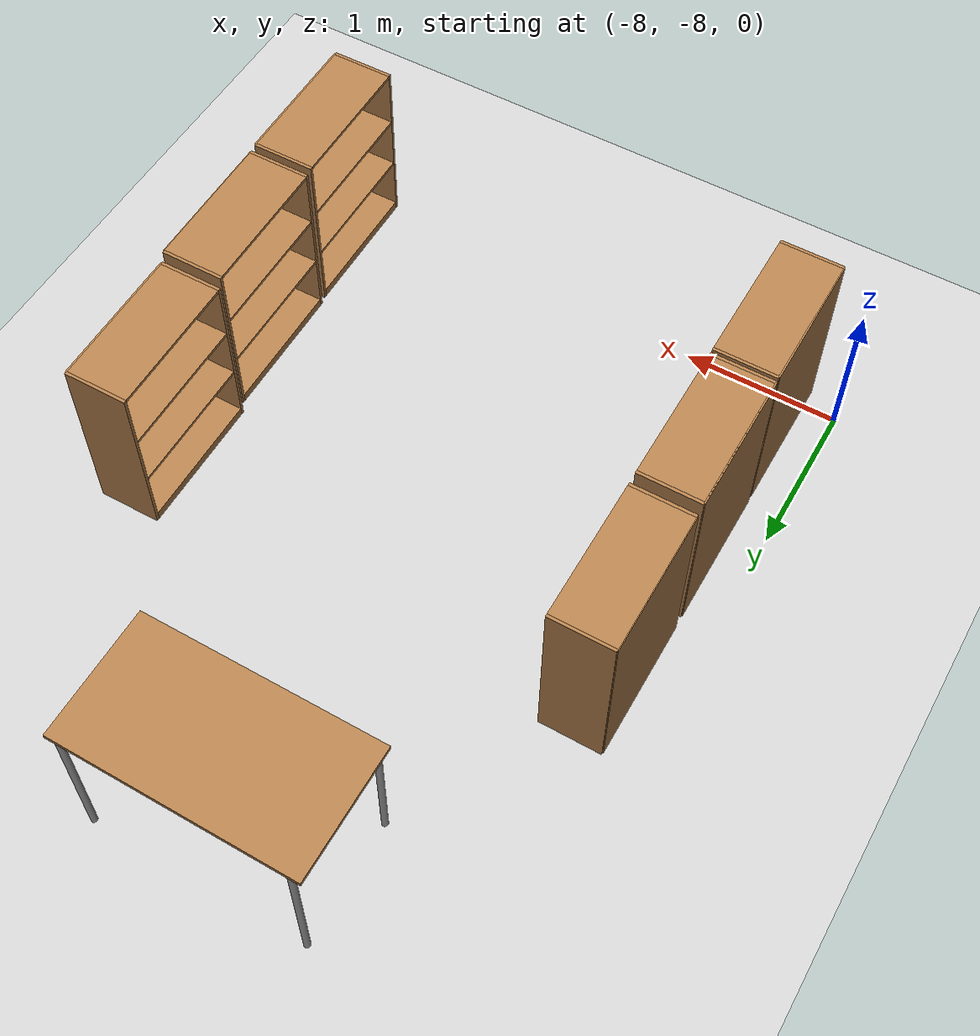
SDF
<sdf version="1.6">
 <world name="default">
  <model name="ground_plane">
   <static>1</static>
   <link name="link">
    <collision name="collision">
     <geometry><plane><normal>0 0 1</normal><size>100 100</size></plane></geometry>
     <surface><friction><ode><mu>100</mu><mu2>50</mu2></ode></friction></surface>
    </collision>
    <visual name="visual">
     <cast_shadows>0</cast_shadows>
     <geometry><plane><normal>0 0 1</normal><size>100 100</size></plane></geometry>
     <material>
      <script><uri>file://media/materials/scripts/gazebo.material</uri><name>Gazebo/Grey</name></script>
     </material>
    </visual>
   </link>
  </model>
  <model name="bookshelf">
   <static>1</static>
   <link name="link">
    <inertial><mass>1</mass></inertial>
    <collision name="back">
     <pose>0 0.005 0.6 0 -0 0</pose>
     <geometry><box><size>0.9 0.01 1.2</size></box></geometry>
    </collision>
    <visual name="visual1">
     <pose>0 0.005 0.6 0 -0 0</pose>
     <geometry><box><size>0.9 0.01 1.2</size></box></geometry>
     <material>
      <script><uri>file://media/materials/scripts/gazebo.material</uri><name>Gazebo/Wood</name></script>
     </material>
    </visual>
    <collision name="left_side">
     <pose>0.45 -0.195 0.6 0 -0 0</pose>
     <geometry><box><size>0.02 0.4 1.2</size></box></geometry>
    </collision>
    <visual name="visual2">
     <pose>0.45 -0.195 0.6 0 -0 0</pose>
     <geometry><box><size>0.02 0.4 1.2</size></box></geometry>
     <material>
      <script><uri>file://media/materials/scripts/gazebo.material</uri><name>Gazebo/Wood</name></script>
     </material>
    </visual>
    <collision name="right_side">
     <pose>-0.45 -0.195 0.6 0 -0 0</pose>
     <geometry><box><size>0.02 0.4 1.2</size></box></geometry>
    </collision>
    <visual name="visual3">
     <pose>-0.45 -0.195 0.6 0 -0 0</pose>
     <geometry><box><size>0.02 0.4 1.2</size></box></geometry>
     <material>
      <script><uri>file://media/materials/scripts/gazebo.material</uri><name>Gazebo/Wood</name></script>
     </material>
    </visual>
    <collision name="bottom">
     <pose>0 -0.195 0.03 0 -0 0</pose>
     <geometry><box><size>0.88 0.4 0.06</size></box></geometry>
    </collision>
    <visual name="visual4">
     <pose>0 -0.195 0.03 0 -0 0</pose>
     <geometry><box><size>0.88 0.4 0.06</size></box></geometry>
     <material>
      <script><uri>file://media/materials/scripts/gazebo.material</uri><name>Gazebo/Wood</name></script>
     </material>
    </visual>
    <collision name="top">
     <pose>0 -0.195 1.19 0 -0 0</pose>
     <geometry><box><size>0.88 0.4 0.02</size></box></geometry>
    </collision>
    <visual name="visual5">
     <pose>0 -0.195 1.19 0 -0 0</pose>
     <geometry><box><size>0.88 0.4 0.02</size></box></geometry>
     <material>
      <script><uri>file://media/materials/scripts/gazebo.material</uri><name>Gazebo/Wood</name></script>
     </material>
    </visual>
    <collision name="low_shelf">
     <pose>0 -0.195 0.43 0 -0 0</pose>
     <geometry><box><size>0.88 0.4 0.02</size></box></geometry>
    </collision>
    <visual name="visual6">
     <pose>0 -0.195 0.43 0 -0 0</pose>
     <geometry><box><size>0.88 0.4 0.02</size></box></geometry>
     <material>
      <script><uri>file://media/materials/scripts/gazebo.material</uri><name>Gazebo/Wood</name></script>
     </material>
    </visual>
    <collision name="high_shelf">
     <pose>0 -0.195 0.8 0 -0 0</pose>
     <geometry><box><size>0.88 0.4 0.02</size></box></geometry>
    </collision>
    <visual name="visual7">
     <pose>0 -0.195 0.8 0 -0 0</pose>
     <geometry><box><size>0.88 0.4 0.02</size></box></geometry>
     <material>
      <script><uri>file://media/materials/scripts/gazebo.material</uri><name>Gazebo/Wood</name></script>
     </material>
    </visual>
   </link>
   <pose>-7.78136 -7.6809 0 0 -0 1.57147</pose>
  </model>
  <model name="bookshelf_clone">
   <static>1</static>
   <link name="link">
    <inertial><mass>1</mass></inertial>
    <collision name="back">
     <pose>0 0.005 0.6 0 -0 0</pose>
     <geometry><box><size>0.9 0.01 1.2</size></box></geometry>
    </collision>
    <visual name="visual1">
     <pose>0 0.005 0.6 0 -0 0</pose>
     <geometry><box><size>0.9 0.01 1.2</size></box></geometry>
     <material>
      <script><uri>file://media/materials/scripts/gazebo.material</uri><name>Gazebo/Wood</name></script>
     </material>
    </visual>
    <collision name="left_side">
     <pose>0.45 -0.195 0.6 0 -0 0</pose>
     <geometry><box><size>0.02 0.4 1.2</size></box></geometry>
    </collision>
    <visual name="visual2">
     <pose>0.45 -0.195 0.6 0 -0 0</pose>
     <geometry><box><size>0.02 0.4 1.2</size></box></geometry>
     <material>
      <script><uri>file://media/materials/scripts/gazebo.material</uri><name>Gazebo/Wood</name></script>
     </material>
    </visual>
    <collision name="right_side">
     <pose>-0.45 -0.195 0.6 0 -0 0</pose>
     <geometry><box><size>0.02 0.4 1.2</size></box></geometry>
    </collision>
    <visual name="visual3">
     <pose>-0.45 -0.195 0.6 0 -0 0</pose>
     <geometry><box><size>0.02 0.4 1.2</size></box></geometry>
     <material>
      <script><uri>file://media/materials/scripts/gazebo.material</uri><name>Gazebo/Wood</name></script>
     </material>
    </visual>
    <collision name="bottom">
     <pose>0 -0.195 0.03 0 -0 0</pose>
     <geometry><box><size>0.88 0.4 0.06</size></box></geometry>
    </collision>
    <visual name="visual4">
     <pose>0 -0.195 0.03 0 -0 0</pose>
     <geometry><box><size>0.88 0.4 0.06</size></box></geometry>
     <material>
      <script><uri>file://media/materials/scripts/gazebo.material</uri><name>Gazebo/Wood</name></script>
     </material>
    </visual>
    <collision name="top">
     <pose>0 -0.195 1.19 0 -0 0</pose>
     <geometry><box><size>0.88 0.4 0.02</size></box></geometry>
    </collision>
    <visual name="visual5">
     <pose>0 -0.195 1.19 0 -0 0</pose>
     <geometry><box><size>0.88 0.4 0.02</size></box></geometry>
     <material>
      <script><uri>file://media/materials/scripts/gazebo.material</uri><name>Gazebo/Wood</name></script>
     </material>
    </visual>
    <collision name="low_shelf">
     <pose>0 -0.195 0.43 0 -0 0</pose>
     <geometry><box><size>0.88 0.4 0.02</size></box></geometry>
    </collision>
    <visual name="visual6">
     <pose>0 -0.195 0.43 0 -0 0</pose>
     <geometry><box><size>0.88 0.4 0.02</size></box></geometry>
     <material>
      <script><uri>file://media/materials/scripts/gazebo.material</uri><name>Gazebo/Wood</name></script>
     </material>
    </visual>
    <collision name="high_shelf">
     <pose>0 -0.195 0.8 0 -0 0</pose>
     <geometry><box><size>0.88 0.4 0.02</size></box></geometry>
    </collision>
    <visual name="visual7">
     <pose>0 -0.195 0.8 0 -0 0</pose>
     <geometry><box><size>0.88 0.4 0.02</size></box></geometry>
     <material>
      <script><uri>file://media/materials/scripts/gazebo.material</uri><name>Gazebo/Wood</name></script>
     </material>
    </visual>
   </link>
   <pose>-7.78423 -6.74163 0 0 -0 1.57147</pose>
  </model>
  <model name="bookshelf_clone_0">
   <static>1</static>
   <link name="link">
    <inertial><mass>1</mass></inertial>
    <collision name="back">
     <pose>0 0.005 0.6 0 -0 0</pose>
     <geometry><box><size>0.9 0.01 1.2</size></box></geometry>
    </collision>
    <visual name="visual1">
     <pose>0 0.005 0.6 0 -0 0</pose>
     <geometry><box><size>0.9 0.01 1.2</size></box></geometry>
     <material>
      <script><uri>file://media/materials/scripts/gazebo.material</uri><name>Gazebo/Wood</name></script>
     </material>
    </visual>
    <collision name="left_side">
     <pose>0.45 -0.195 0.6 0 -0 0</pose>
     <geometry><box><size>0.02 0.4 1.2</size></box></geometry>
    </collision>
    <visual name="visual2">
     <pose>0.45 -0.195 0.6 0 -0 0</pose>
     <geometry><box><size>0.02 0.4 1.2</size></box></geometry>
     <material>
      <script><uri>file://media/materials/scripts/gazebo.material</uri><name>Gazebo/Wood</name></script>
     </material>
    </visual>
    <collision name="right_side">
     <pose>-0.45 -0.195 0.6 0 -0 0</pose>
     <geometry><box><size>0.02 0.4 1.2</size></box></geometry>
    </collision>
    <visual name="visual3">
     <pose>-0.45 -0.195 0.6 0 -0 0</pose>
     <geometry><box><size>0.02 0.4 1.2</size></box></geometry>
     <material>
      <script><uri>file://media/materials/scripts/gazebo.material</uri><name>Gazebo/Wood</name></script>
     </material>
    </visual>
    <collision name="bottom">
     <pose>0 -0.195 0.03 0 -0 0</pose>
     <geometry><box><size>0.88 0.4 0.06</size></box></geometry>
    </collision>
    <visual name="visual4">
     <pose>0 -0.195 0.03 0 -0 0</pose>
     <geometry><box><size>0.88 0.4 0.06</size></box></geometry>
     <material>
      <script><uri>file://media/materials/scripts/gazebo.material</uri><name>Gazebo/Wood</name></script>
     </material>
    </visual>
    <collision name="top">
     <pose>0 -0.195 1.19 0 -0 0</pose>
     <geometry><box><size>0.88 0.4 0.02</size></box></geometry>
    </collision>
    <visual name="visual5">
     <pose>0 -0.195 1.19 0 -0 0</pose>
     <geometry><box><size>0.88 0.4 0.02</size></box></geometry>
     <material>
      <script><uri>file://media/materials/scripts/gazebo.material</uri><name>Gazebo/Wood</name></script>
     </material>
    </visual>
    <collision name="low_shelf">
     <pose>0 -0.195 0.43 0 -0 0</pose>
     <geometry><box><size>0.88 0.4 0.02</size></box></geometry>
    </collision>
    <visual name="visual6">
     <pose>0 -0.195 0.43 0 -0 0</pose>
     <geometry><box><size>0.88 0.4 0.02</size></box></geometry>
     <material>
      <script><uri>file://media/materials/scripts/gazebo.material</uri><name>Gazebo/Wood</name></script>
     </material>
    </visual>
    <collision name="high_shelf">
     <pose>0 -0.195 0.8 0 -0 0</pose>
     <geometry><box><size>0.88 0.4 0.02</size></box></geometry>
    </collision>
    <visual name="visual7">
     <pose>0 -0.195 0.8 0 -0 0</pose>
     <geometry><box><size>0.88 0.4 0.02</size></box></geometry>
     <material>
      <script><uri>file://media/materials/scripts/gazebo.material</uri><name>Gazebo/Wood</name></script>
     </material>
    </visual>
   </link>
   <pose>-7.78677 -5.75368 0 0 -0 1.57147</pose>
  </model>
  <model name="bookshelf_clone_1">
   <static>1</static>
   <link name="link">
    <inertial><mass>1</mass></inertial>
    <collision name="back">
     <pose>0 0.005 0.6 0 -0 0</pose>
     <geometry><box><size>0.9 0.01 1.2</size></box></geometry>
    </collision>
    <visual name="visual1">
     <pose>0 0.005 0.6 0 -0 0</pose>
     <geometry><box><size>0.9 0.01 1.2</size></box></geometry>
     <material>
      <script><uri>file://media/materials/scripts/gazebo.material</uri><name>Gazebo/Wood</name></script>
     </material>
    </visual>
    <collision name="left_side">
     <pose>0.45 -0.195 0.6 0 -0 0</pose>
     <geometry><box><size>0.02 0.4 1.2</size></box></geometry>
    </collision>
    <visual name="visual2">
     <pose>0.45 -0.195 0.6 0 -0 0</pose>
     <geometry><box><size>0.02 0.4 1.2</size></box></geometry>
     <material>
      <script><uri>file://media/materials/scripts/gazebo.material</uri><name>Gazebo/Wood</name></script>
     </material>
    </visual>
    <collision name="right_side">
     <pose>-0.45 -0.195 0.6 0 -0 0</pose>
     <geometry><box><size>0.02 0.4 1.2</size></box></geometry>
    </collision>
    <visual name="visual3">
     <pose>-0.45 -0.195 0.6 0 -0 0</pose>
     <geometry><box><size>0.02 0.4 1.2</size></box></geometry>
     <material>
      <script><uri>file://media/materials/scripts/gazebo.material</uri><name>Gazebo/Wood</name></script>
     </material>
    </visual>
    <collision name="bottom">
     <pose>0 -0.195 0.03 0 -0 0</pose>
     <geometry><box><size>0.88 0.4 0.06</size></box></geometry>
    </collision>
    <visual name="visual4">
     <pose>0 -0.195 0.03 0 -0 0</pose>
     <geometry><box><size>0.88 0.4 0.06</size></box></geometry>
     <material>
      <script><uri>file://media/materials/scripts/gazebo.material</uri><name>Gazebo/Wood</name></script>
     </material>
    </visual>
    <collision name="top">
     <pose>0 -0.195 1.19 0 -0 0</pose>
     <geometry><box><size>0.88 0.4 0.02</size></box></geometry>
    </collision>
    <visual name="visual5">
     <pose>0 -0.195 1.19 0 -0 0</pose>
     <geometry><box><size>0.88 0.4 0.02</size></box></geometry>
     <material>
      <script><uri>file://media/materials/scripts/gazebo.material</uri><name>Gazebo/Wood</name></script>
     </material>
    </visual>
    <collision name="low_shelf">
     <pose>0 -0.195 0.43 0 -0 0</pose>
     <geometry><box><size>0.88 0.4 0.02</size></box></geometry>
    </collision>
    <visual name="visual6">
     <pose>0 -0.195 0.43 0 -0 0</pose>
     <geometry><box><size>0.88 0.4 0.02</size></box></geometry>
     <material>
      <script><uri>file://media/materials/scripts/gazebo.material</uri><name>Gazebo/Wood</name></script>
     </material>
    </visual>
    <collision name="high_shelf">
     <pose>0 -0.195 0.8 0 -0 0</pose>
     <geometry><box><size>0.88 0.4 0.02</size></box></geometry>
    </collision>
    <visual name="visual7">
     <pose>0 -0.195 0.8 0 -0 0</pose>
     <geometry><box><size>0.88 0.4 0.02</size></box></geometry>
     <material>
      <script><uri>file://media/materials/scripts/gazebo.material</uri><name>Gazebo/Wood</name></script>
     </material>
    </visual>
   </link>
   <pose>-4.33405 -7.70418 0 0 0 -1.5643</pose>
  </model>
  <model name="bookshelf_clone_1_clone">
   <static>1</static>
   <link name="link">
    <inertial><mass>1</mass></inertial>
    <collision name="back">
     <pose>0 0.005 0.6 0 -0 0</pose>
     <geometry><box><size>0.9 0.01 1.2</size></box></geometry>
    </collision>
    <visual name="visual1">
     <pose>0 0.005 0.6 0 -0 0</pose>
     <geometry><box><size>0.9 0.01 1.2</size></box></geometry>
     <material>
      <script><uri>file://media/materials/scripts/gazebo.material</uri><name>Gazebo/Wood</name></script>
     </material>
    </visual>
    <collision name="left_side">
     <pose>0.45 -0.195 0.6 0 -0 0</pose>
     <geometry><box><size>0.02 0.4 1.2</size></box></geometry>
    </collision>
    <visual name="visual2">
     <pose>0.45 -0.195 0.6 0 -0 0</pose>
     <geometry><box><size>0.02 0.4 1.2</size></box></geometry>
     <material>
      <script><uri>file://media/materials/scripts/gazebo.material</uri><name>Gazebo/Wood</name></script>
     </material>
    </visual>
    <collision name="right_side">
     <pose>-0.45 -0.195 0.6 0 -0 0</pose>
     <geometry><box><size>0.02 0.4 1.2</size></box></geometry>
    </collision>
    <visual name="visual3">
     <pose>-0.45 -0.195 0.6 0 -0 0</pose>
     <geometry><box><size>0.02 0.4 1.2</size></box></geometry>
     <material>
      <script><uri>file://media/materials/scripts/gazebo.material</uri><name>Gazebo/Wood</name></script>
     </material>
    </visual>
    <collision name="bottom">
     <pose>0 -0.195 0.03 0 -0 0</pose>
     <geometry><box><size>0.88 0.4 0.06</size></box></geometry>
    </collision>
    <visual name="visual4">
     <pose>0 -0.195 0.03 0 -0 0</pose>
     <geometry><box><size>0.88 0.4 0.06</size></box></geometry>
     <material>
      <script><uri>file://media/materials/scripts/gazebo.material</uri><name>Gazebo/Wood</name></script>
     </material>
    </visual>
    <collision name="top">
     <pose>0 -0.195 1.19 0 -0 0</pose>
     <geometry><box><size>0.88 0.4 0.02</size></box></geometry>
    </collision>
    <visual name="visual5">
     <pose>0 -0.195 1.19 0 -0 0</pose>
     <geometry><box><size>0.88 0.4 0.02</size></box></geometry>
     <material>
      <script><uri>file://media/materials/scripts/gazebo.material</uri><name>Gazebo/Wood</name></script>
     </material>
    </visual>
    <collision name="low_shelf">
     <pose>0 -0.195 0.43 0 -0 0</pose>
     <geometry><box><size>0.88 0.4 0.02</size></box></geometry>
    </collision>
    <visual name="visual6">
     <pose>0 -0.195 0.43 0 -0 0</pose>
     <geometry><box><size>0.88 0.4 0.02</size></box></geometry>
     <material>
      <script><uri>file://media/materials/scripts/gazebo.material</uri><name>Gazebo/Wood</name></script>
     </material>
    </visual>
    <collision name="high_shelf">
     <pose>0 -0.195 0.8 0 -0 0</pose>
     <geometry><box><size>0.88 0.4 0.02</size></box></geometry>
    </collision>
    <visual name="visual7">
     <pose>0 -0.195 0.8 0 -0 0</pose>
     <geometry><box><size>0.88 0.4 0.02</size></box></geometry>
     <material>
      <script><uri>file://media/materials/scripts/gazebo.material</uri><name>Gazebo/Wood</name></script>
     </material>
    </visual>
   </link>
   <pose>-4.35252 -6.73795 0 0 0 -1.5643</pose>
  </model>
  <model name="bookshelf_clone_1_clone_0">
   <static>1</static>
   <link name="link">
    <inertial><mass>1</mass></inertial>
    <collision name="back">
     <pose>0 0.005 0.6 0 -0 0</pose>
     <geometry><box><size>0.9 0.01 1.2</size></box></geometry>
    </collision>
    <visual name="visual1">
     <pose>0 0.005 0.6 0 -0 0</pose>
     <geometry><box><size>0.9 0.01 1.2</size></box></geometry>
     <material>
      <script><uri>file://media/materials/scripts/gazebo.material</uri><name>Gazebo/Wood</name></script>
     </material>
    </visual>
    <collision name="left_side">
     <pose>0.45 -0.195 0.6 0 -0 0</pose>
     <geometry><box><size>0.02 0.4 1.2</size></box></geometry>
    </collision>
    <visual name="visual2">
     <pose>0.45 -0.195 0.6 0 -0 0</pose>
     <geometry><box><size>0.02 0.4 1.2</size></box></geometry>
     <material>
      <script><uri>file://media/materials/scripts/gazebo.material</uri><name>Gazebo/Wood</name></script>
     </material>
    </visual>
    <collision name="right_side">
     <pose>-0.45 -0.195 0.6 0 -0 0</pose>
     <geometry><box><size>0.02 0.4 1.2</size></box></geometry>
    </collision>
    <visual name="visual3">
     <pose>-0.45 -0.195 0.6 0 -0 0</pose>
     <geometry><box><size>0.02 0.4 1.2</size></box></geometry>
     <material>
      <script><uri>file://media/materials/scripts/gazebo.material</uri><name>Gazebo/Wood</name></script>
     </material>
    </visual>
    <collision name="bottom">
     <pose>0 -0.195 0.03 0 -0 0</pose>
     <geometry><box><size>0.88 0.4 0.06</size></box></geometry>
    </collision>
    <visual name="visual4">
     <pose>0 -0.195 0.03 0 -0 0</pose>
     <geometry><box><size>0.88 0.4 0.06</size></box></geometry>
     <material>
      <script><uri>file://media/materials/scripts/gazebo.material</uri><name>Gazebo/Wood</name></script>
     </material>
    </visual>
    <collision name="top">
     <pose>0 -0.195 1.19 0 -0 0</pose>
     <geometry><box><size>0.88 0.4 0.02</size></box></geometry>
    </collision>
    <visual name="visual5">
     <pose>0 -0.195 1.19 0 -0 0</pose>
     <geometry><box><size>0.88 0.4 0.02</size></box></geometry>
     <material>
      <script><uri>file://media/materials/scripts/gazebo.material</uri><name>Gazebo/Wood</name></script>
     </material>
    </visual>
    <collision name="low_shelf">
     <pose>0 -0.195 0.43 0 -0 0</pose>
     <geometry><box><size>0.88 0.4 0.02</size></box></geometry>
    </collision>
    <visual name="visual6">
     <pose>0 -0.195 0.43 0 -0 0</pose>
     <geometry><box><size>0.88 0.4 0.02</size></box></geometry>
     <material>
      <script><uri>file://media/materials/scripts/gazebo.material</uri><name>Gazebo/Wood</name></script>
     </material>
    </visual>
    <collision name="high_shelf">
     <pose>0 -0.195 0.8 0 -0 0</pose>
     <geometry><box><size>0.88 0.4 0.02</size></box></geometry>
    </collision>
    <visual name="visual7">
     <pose>0 -0.195 0.8 0 -0 0</pose>
     <geometry><box><size>0.88 0.4 0.02</size></box></geometry>
     <material>
      <script><uri>file://media/materials/scripts/gazebo.material</uri><name>Gazebo/Wood</name></script>
     </material>
    </visual>
   </link>
   <pose>-4.3991 -5.76129 0 0 0 -1.5643</pose>
  </model>
  <model name="table_0">
   <static>1</static>
   <link name="link">
    <collision name="surface">
     <pose>0 0 1 0 -0 0</pose>
     <geometry><box><size>1.5 0.8 0.03</size></box></geometry>
     <surface><friction><ode><mu>0.6</mu><mu2>0.6</mu2></ode></friction></surface>
    </collision>
    <visual name="visual1">
     <pose>0 0 1 0 -0 0</pose>
     <geometry><box><size>1.5 0.8 0.03</size></box></geometry>
     <material>
      <script><uri>file://media/materials/scripts/gazebo.material</uri><name>Gazebo/Wood</name></script>
     </material>
    </visual>
    <collision name="front_left_leg">
     <pose>0.68 0.38 0.5 0 -0 0</pose>
     <geometry><cylinder><radius>0.02</radius><length>1</length></cylinder></geometry>
    </collision>
    <visual name="front_left_leg">
     <pose>0.68 0.38 0.5 0 -0 0</pose>
     <geometry><cylinder><radius>0.02</radius><length>1</length></cylinder></geometry>
     <material>
      <script><uri>file://media/materials/scripts/gazebo.material</uri><name>Gazebo/Grey</name></script>
     </material>
    </visual>
    <collision name="front_right_leg">
     <pose>0.68 -0.38 0.5 0 -0 0</pose>
     <geometry><cylinder><radius>0.02</radius><length>1</length></cylinder></geometry>
    </collision>
    <visual name="front_right_leg">
     <pose>0.68 -0.38 0.5 0 -0 0</pose>
     <geometry><cylinder><radius>0.02</radius><length>1</length></cylinder></geometry>
     <material>
      <script><uri>file://media/materials/scripts/gazebo.material</uri><name>Gazebo/Grey</name></script>
     </material>
    </visual>
    <collision name="back_right_leg">
     <pose>-0.68 -0.38 0.5 0 -0 0</pose>
     <geometry><cylinder><radius>0.02</radius><length>1</length></cylinder></geometry>
    </collision>
    <visual name="back_right_leg">
     <pose>-0.68 -0.38 0.5 0 -0 0</pose>
     <geometry><cylinder><radius>0.02</radius><length>1</length></cylinder></geometry>
     <material>
      <script><uri>file://media/materials/scripts/gazebo.material</uri><name>Gazebo/Grey</name></script>
     </material>
    </visual>
    <collision name="back_left_leg">
     <pose>-0.68 0.38 0.5 0 -0 0</pose>
     <geometry><cylinder><radius>0.02</radius><length>1</length></cylinder></geometry>
    </collision>
    <visual name="back_left_leg">
     <pose>-0.68 0.38 0.5 0 -0 0</pose>
     <geometry><cylinder><radius>0.02</radius><length>1</length></cylinder></geometry>
     <material>
      <script><uri>file://media/materials/scripts/gazebo.material</uri><name>Gazebo/Grey</name></script>
     </material>
    </visual>
   </link>
   <pose>-6.29312 -3.983 0 0 -0 0</pose>
  </model>
 </world>
</sdf>
